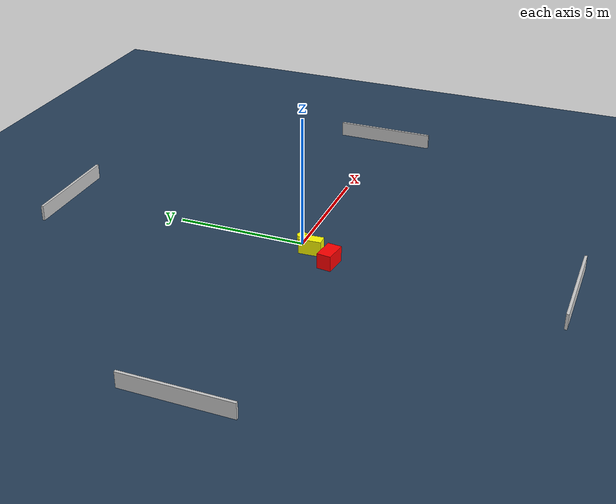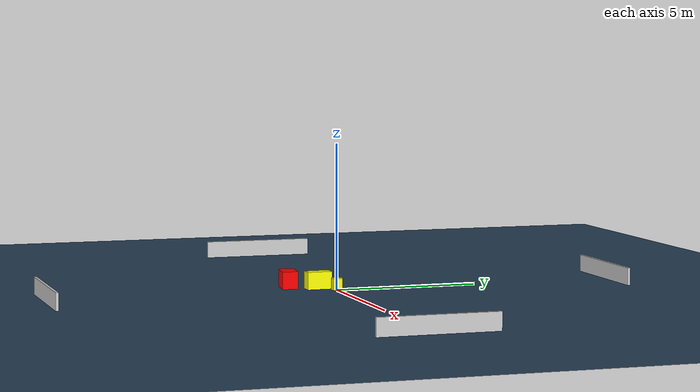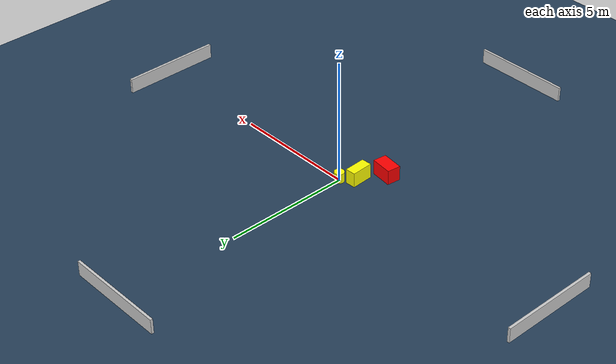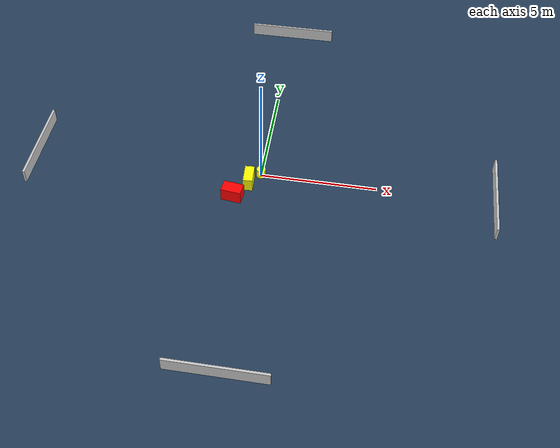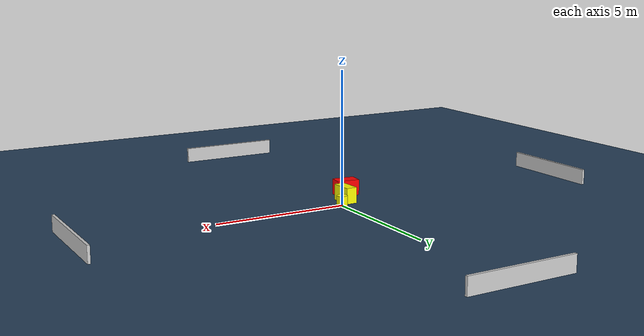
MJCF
<?xml version="1.0" ?>
<mujoco model="generated_environment">
  <option timestep="0.01" integrator="RK4" cone="elliptic"/>
  <default>
    <geom density="1"/>
  </default>
  <asset>
    <texture builtin="gradient" height="3072" name="skybox" rgb1="0.3 0.5 0.7" rgb2="0 0 0" type="skybox" width="512"/>
    <texture builtin="checker" height="300" name="groundplane" rgb1="0.2 0.3 0.4" rgb2="0.1 0.2 0.3" type="2d" width="300"/>
    <material name="groundplane" reflectance="0.2" texrepeat="5 5" texture="groundplane"/>
  </asset>
  <worldbody>
    <light dir="0 0 -1" directional="true" pos="0 0 1.5"/>
    <geom condim="3" friction="0.5 0.005 0.001" material="groundplane" name="floor" pos="0 0 0" size="0 0 0.05" type="plane"/>
    <body name="walls">
      <geom name="wall_1" condim="4" pos="-10.0 0.0 0.3" rgba="0.800000011920929 0.800000011920929 0.800000011920929 1.0" size="0.05 2.0 0.3" type="box"/>
      <geom name="wall_2" condim="4" pos="10.0 0.0 0.3" rgba="0.800000011920929 0.800000011920929 0.800000011920929 1.0" size="0.05 2.0 0.3" type="box"/>
      <geom name="wall_3" condim="4" pos="0.0 -10.0 0.3" rgba="0.800000011920929 0.800000011920929 0.800000011920929 1.0" size="2.0 0.05 0.3" type="box"/>
      <geom name="wall_4" condim="4" pos="0.0 10.0 0.3" rgba="0.800000011920929 0.800000011920929 0.800000011920929 1.0" size="2.0 0.05 0.3" type="box"/>
    </body>
    <body name="robot">
      <joint name="joint_x" type="slide" pos="0 0 0" axis="1 0 0"/>
      <joint name="joint_y" type="slide" pos="0 0 0" axis="0 1 0"/>
      <geom name="robot" type="cylinder" pos="0.0 0.0 0.2" size="0.2 0.2 0.0" mass="5.0" friction="1.0 0.005 0.0001" condim="4" rgba="1.0 1.0 0.0 1.0"/>
    </body>
    <body name="obstacle_1_movable">
      <geom name="obstacle_1_movable" condim="4" pos="-0.4514908719566588 -0.5283935481793086 0.3" euler="0 0 272.7381782291244" friction="0.0 0.005 0.001" rgba="1.0 1.0 0.0 1.0" size="0.4317570956015464 0.20449911079700508 0.3" type="box" mass="0.1"/>
      <joint type="free"/>
    </body>
    <body name="obstacle_2_static">
      <geom name="obstacle_2_static" condim="4" pos="-1.0025481914655299 -1.433858045232745 0.3" euler="0 0 82.8659840282951" friction="0.0 0.005 0.001" rgba="1.0 0.0 0.0 1.0" size="0.26919658607584135 0.4338090878856438 0.3" type="box"/>
    </body>
  </worldbody>
  <actuator>
    <motor name="actuator_x" joint="joint_x" gear="1" ctrlrange="-1 1"/>
    <motor name="actuator_y" joint="joint_y" gear="1" ctrlrange="-1 1"/>
  </actuator>
</mujoco>
